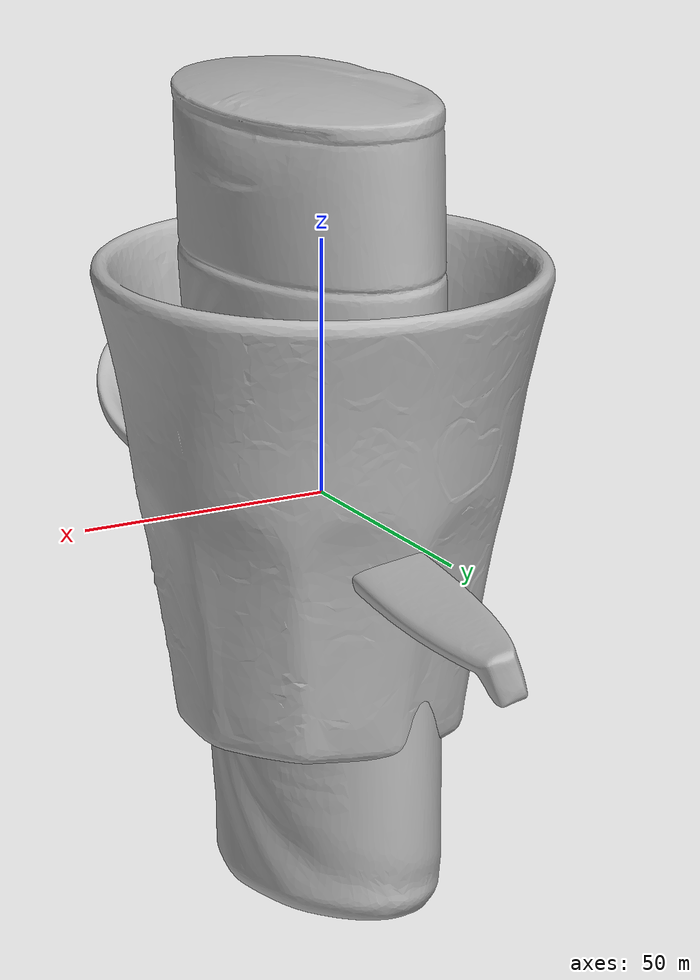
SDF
<sdf version="1.4">
 <world name="default">
  <light name="light1" type="point">
   <pose>0 0 1 0 0 0</pose>
   <diffuse>3 3 3 1</diffuse>
   <specular>3 3 3 1</specular>
  </light>
  <light name="light2" type="point">
   <pose>0 0.5 2 0 0 0</pose>
   <diffuse>1 1 1 1</diffuse>
   <specular>1 1 1 1</specular>
  </light>
  <light name="light3" type="point">
   <pose>0 0.5 2 0 0 0</pose>
   <diffuse>3 3 3 1</diffuse>
   <specular>3 3 3 1</specular>
  </light>
  <scene><ambient>0.7 0.7 0.7</ambient></scene>
  <model name="bottle1">
   <link name="link_bottle1">
    <collision name="default">
     <geometry>
      <mesh><uri>model://conditioner/collision_meshes/collision.obj</uri><scale>1.0 1.0 1.0</scale></mesh>
     </geometry>
     <surface>
      <friction><ode><mu>0.5</mu><mu2>0.5</mu2></ode></friction>
      <contact><ode><max_vel>0</max_vel><min_depth>0.0001</min_depth><kp>1e8</kp></ode></contact>
     </surface>
    </collision>
    <visual name="default">
     <geometry>
      <mesh><uri>model://conditioner/visual_meshes/visual.dae</uri><scale>1.0 1.0 1.0</scale></mesh>
     </geometry>
    </visual>
    <inertial>
     <mass>0.31316134333610535</mass>
     <pose>-0.00055994390277192 -0.0001729748910292983 0.004359682556241751 -0.005038373535624127 0.01530604069317056 0.015072338587352078</pose>
     <inertia>
      <ixx>0.0006812382</ixx>
      <iyy>0.000729753</iyy>
      <izz>0.000105037434</izz>
      <ixy>0</ixy>
      <ixz>0</ixz>
      <iyz>0</iyz>
     </inertia>
    </inertial>
   </link>
   <pose>0.2755209505558014 -0.13206957280635834 0.0812297835946083 0.036891891874574444 -0.01565818335159705 1.7332285323432033</pose>
  </model>
  <model name="bottle2">
   <link name="link_bottle2">
    <collision name="default">
     <geometry>
      <mesh><uri>model://pigeon/collision_meshes/collision.obj</uri><scale>1.0 1.0 1.0</scale></mesh>
     </geometry>
     <surface>
      <friction><ode><mu>0.5</mu><mu2>0.5</mu2></ode></friction>
      <contact><ode><max_vel>0</max_vel><min_depth>0.0001</min_depth><kp>1e8</kp></ode></contact>
     </surface>
    </collision>
    <visual name="default">
     <geometry><mesh><uri>model://pigeon/visual_meshes/visual.dae</uri><scale>1.0 1.0 1.0</scale></mesh></geometry>
    </visual>
    <inertial>
     <mass>0.6510184407234192</mass>
     <pose>-9.675473847892135e-05 -0.00019276776583865285 -0.01593620888888836 -0.011704407543161608 -0.0012978192378484078 -0.04198827283679603</pose>
     <inertia>
      <ixx>0.0016273881</ixx>
      <iyy>0.0017372583</iyy>
      <izz>0.00033475916</izz>
      <ixy>0</ixy>
      <ixz>0</ixz>
      <iyz>0</iyz>
     </inertia>
    </inertial>
   </link>
   <pose>0.16908486187458038 0.04156346991658211 0.09864483773708344 2.3957335945674458e-05 3.400459488926805e-06 2.432221889923392</pose>
  </model>
  <model name="silverware1">
   <link name="link_silverware1">
    <collision name="default">
     <geometry>
      <mesh><uri>model://doraemon_spoon/collision_meshes/collision.obj</uri><scale>1.0 1.0 1.0</scale></mesh>
     </geometry>
     <surface>
      <friction><ode><mu>0.5</mu><mu2>0.5</mu2></ode></friction>
      <contact><ode><max_vel>0</max_vel><min_depth>0.0001</min_depth><kp>1e8</kp></ode></contact>
     </surface>
    </collision>
    <visual name="default">
     <geometry>
      <mesh><uri>model://doraemon_spoon/visual_meshes/visual.dae</uri><scale>1.0 1.0 1.0</scale></mesh>
     </geometry>
    </visual>
    <inertial>
     <mass>0.020366016775369644</mass>
     <pose>-0.022165074944496155 -0.0006374584045261145 -0.0033325462136417627 -0.009147200915366215 0.0738041822243956 -0.014123826891092987</pose>
     <inertia>
      <ixx>1.5952605e-06</ixx>
      <iyy>4.5307766e-05</iyy>
      <izz>4.6078047e-05</izz>
      <ixy>0</ixy>
      <ixz>0</ixz>
      <iyz>0</iyz>
     </inertia>
    </inertial>
   </link>
   <pose>0.2888033390045166 0.07713209092617035 0.014739319682121277 0.27903184969324984 -0.01033657458450552 1.4693020816372482</pose>
  </model>
  <model name="stationery1">
   <link name="link_stationery1">
    <collision name="default">
     <geometry>
      <mesh><uri>model://correction_fuid/collision_meshes/collision.obj</uri><scale>1.0 1.0 1.0</scale></mesh>
     </geometry>
     <surface>
      <friction><ode><mu>0.5</mu><mu2>0.5</mu2></ode></friction>
      <contact><ode><max_vel>0</max_vel><min_depth>0.0001</min_depth><kp>1e8</kp></ode></contact>
     </surface>
    </collision>
    <visual name="default">
     <geometry>
      <mesh><uri>model://correction_fuid/visual_meshes/visual.dae</uri><scale>1.0 1.0 1.0</scale></mesh>
     </geometry>
    </visual>
    <inertial>
     <mass>0.02487199380993843</mass>
     <pose>-0.00012557733862195164 -0.0009722901741042733 -0.001618212671019137 -0.010846607936808557 0.019488255039962172 -0.015992454917835536</pose>
     <inertia>
      <ixx>2.4088951e-05</ixx>
      <iyy>1.4578937e-06</iyy>
      <izz>2.4715917e-05</izz>
      <ixy>0</ixy>
      <ixz>0</ixz>
      <iyz>0</iyz>
     </inertia>
    </inertial>
   </link>
   <pose>0.11834083497524261 -0.13222576677799225 0.009632831439375877 -0.0017271756360005227 -0.05616734055711127 0.09780772537176803</pose>
  </model>
  <model name="bowl1">
   <link name="link_bowl1">
    <collision name="default">
     <geometry>
      <mesh><uri>model://doraemon_bowl/collision_meshes/collision.obj</uri><scale>1.0 1.0 1.0</scale></mesh>
     </geometry>
     <surface>
      <friction><ode><mu>0.5</mu><mu2>0.5</mu2></ode></friction>
      <contact><ode><max_vel>0</max_vel><min_depth>0.0001</min_depth><kp>1e8</kp></ode></contact>
     </surface>
    </collision>
    <visual name="default">
     <geometry>
      <mesh><uri>model://doraemon_bowl/visual_meshes/visual.dae</uri><scale>1.0 1.0 1.0</scale></mesh>
     </geometry>
    </visual>
    <inertial>
     <mass>0.06713785231113434</mass>
     <pose>-0.014629548415541649 0.000485710974317044 -0.0020864871330559254 -0.005093962398800634 -0.10568405274446478 -0.026426476578293747</pose>
     <inertia>
      <ixx>9.309732e-05</ixx>
      <iyy>0.00012251528</iyy>
      <izz>0.00018024874</izz>
      <ixy>0</ixy>
      <ixz>0</ixz>
      <iyz>0</iyz>
     </inertia>
    </inertial>
   </link>
   <pose>-0.015054859220981598 0.28007104992866516 0.02590543031692505 0.00857925479128737 0.006351883649946776 -3.083525193643595</pose>
  </model>
  <model name="cup1">
   <link name="link_cup1">
    <collision name="default">
     <geometry>
      <mesh><uri>model://hello_kitty_cup/collision_meshes/collision.obj</uri><scale>1.0 1.0 1.0</scale></mesh>
     </geometry>
     <surface>
      <friction><ode><mu>0.5</mu><mu2>0.5</mu2></ode></friction>
      <contact><ode><max_vel>0</max_vel><min_depth>0.0001</min_depth><kp>1e8</kp></ode></contact>
     </surface>
    </collision>
    <visual name="default">
     <geometry>
      <mesh><uri>model://hello_kitty_cup/visual_meshes/visual.dae</uri><scale>1.0 1.0 1.0</scale></mesh>
     </geometry>
    </visual>
    <inertial>
     <mass>0.13384777307510376</mass>
     <pose>0.00027251095161773264 0.00027950218645855784 0.0030449770856648684 0.057791450277227645 0.007964955326408191 -0.02045228086216793</pose>
     <inertia>
      <ixx>0.0001843247</ixx>
      <iyy>0.0001863793</iyy>
      <izz>0.00015541737</izz>
      <ixy>0</ixy>
      <ixz>0</ixz>
      <iyz>0</iyz>
     </inertia>
    </inertial>
   </link>
   <pose>-0.024220522493124008 -0.04614964500069618 0.046213988214731216 -0.005712789868036397 0.010787324951688843 -2.9873600506602056</pose>
  </model>
  <model name="plate1">
   <link name="link_plate1">
    <collision name="default">
     <geometry>
      <mesh><uri>model://hello_kitty_plate/collision_meshes/collision.obj</uri><scale>1.0 1.0 1.0</scale></mesh>
     </geometry>
     <surface>
      <friction><ode><mu>0.5</mu><mu2>0.5</mu2></ode></friction>
      <contact><ode><max_vel>0</max_vel><min_depth>0.0001</min_depth><kp>1e8</kp></ode></contact>
     </surface>
    </collision>
    <visual name="default">
     <geometry>
      <mesh><uri>model://hello_kitty_plate/visual_meshes/visual.dae</uri><scale>1.0 1.0 1.0</scale></mesh>
     </geometry>
    </visual>
    <inertial>
     <mass>0.0821625292301178</mass>
     <pose>0.0073142931796610355 0.00028937371098436415 -0.0027947186026722193 -0.0001043184795654353 -0.007054440405958318 -0.014449014916312054</pose>
     <inertia>
      <ixx>0.00015843393</ixx>
      <iyy>0.00029901267</iyy>
      <izz>0.00045402072</izz>
      <ixy>0</ixy>
      <ixz>0</ixz>
      <iyz>0</iyz>
     </inertia>
    </inertial>
   </link>
   <pose>-0.01102881133556366 -0.23102641105651855 0.008291451260447502 0.0004660649714026432 0.004173321522303839 -1.2879244221840833</pose>
  </model>
  <physics type="ode">
   <max_contacts>50</max_contacts>
   <ode>
    <solver><type>quick</type><iters>75</iters></solver>
    <constraints>
     <contact_max_correcting_vel>0</contact_max_correcting_vel>
     <contact_surface_layer>0</contact_surface_layer>
    </constraints>
   </ode>
  </physics>
 </world>
</sdf>
